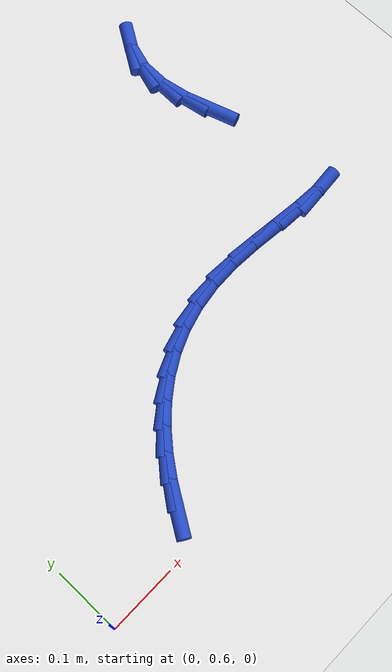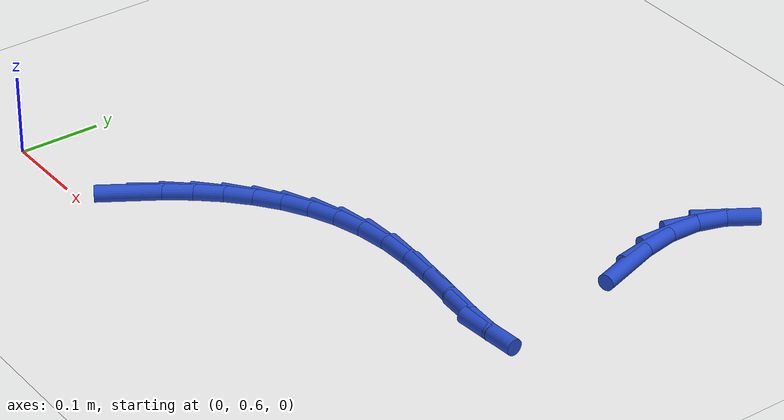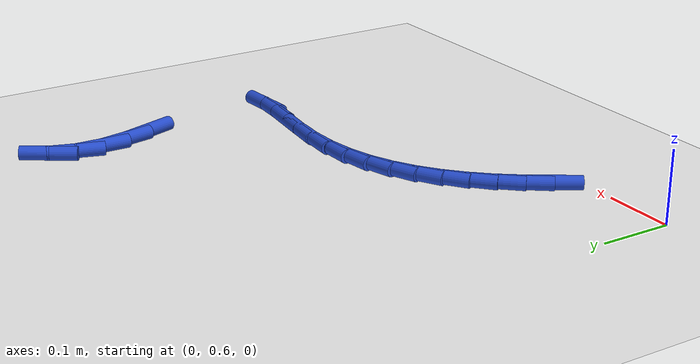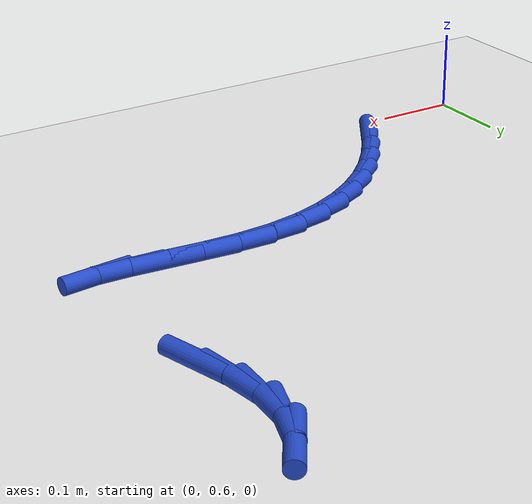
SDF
<sdf version="1.6">
 <world name="default">
  <model name="ground_plane">
   <static>1</static>
   <link name="link">
    <collision name="collision">
     <geometry><plane><normal>0 0 1</normal><size>100 100</size></plane></geometry>
     <surface><friction><ode><mu>100</mu><mu2>50</mu2></ode></friction></surface>
    </collision>
    <visual name="visual">
     <cast_shadows>0</cast_shadows>
     <geometry><plane><normal>0 0 1</normal><size>100 100</size></plane></geometry>
     <material>
      <script><uri>file://media/materials/scripts/gazebo.material</uri><name>Gazebo/WhiteGlow</name></script>
     </material>
    </visual>
   </link>
  </model>
  <model name="line">
   <link name="link_18">
    <pose>0.16115808295651374 0.6467813246118644 0.01 0 1.57 1.0045312615722355</pose>
    <collision name="collision">
     <geometry><cylinder><radius>0.01</radius><length>0.08</length></cylinder></geometry>
    </collision>
    <visual name="visual">
     <material>
      <script><name>Gazebo/Blue</name><uri>file://media/materials/scripts/gazebo.material</uri></script>
     </material>
     <geometry><cylinder><radius>0.01</radius><length>0.08</length></cylinder></geometry>
    </visual>
   </link>
   <link name="link_19">
    <pose>0.1810321488391562 0.6780440266239756 0.01 0 1.57 0.929415427886102</pose>
    <collision name="collision">
     <geometry><cylinder><radius>0.01</radius><length>0.08</length></cylinder></geometry>
    </collision>
    <visual name="visual">
     <material>
      <script><name>Gazebo/Blue</name><uri>file://media/materials/scripts/gazebo.material</uri></script>
     </material>
     <geometry><cylinder><radius>0.01</radius><length>0.08</length></cylinder></geometry>
    </visual>
   </link>
   <link name="link_20">
    <pose>0.20274563695606135 0.707123587821596 0.01 0 1.57 0.843847093934799</pose>
    <collision name="collision">
     <geometry><cylinder><radius>0.01</radius><length>0.08</length></cylinder></geometry>
    </collision>
    <visual name="visual">
     <material>
      <script><name>Gazebo/Blue</name><uri>file://media/materials/scripts/gazebo.material</uri></script>
     </material>
     <geometry><cylinder><radius>0.01</radius><length>0.08</length></cylinder></geometry>
    </visual>
   </link>
   <link name="link_21">
    <pose>0.2264163232118689 0.7337366572496882 0.01 0 1.57 0.7474708683350556</pose>
    <collision name="collision">
     <geometry><cylinder><radius>0.01</radius><length>0.08</length></cylinder></geometry>
    </collision>
    <visual name="visual">
     <material>
      <script><name>Gazebo/Blue</name><uri>file://media/materials/scripts/gazebo.material</uri></script>
     </material>
     <geometry><cylinder><radius>0.01</radius><length>0.08</length></cylinder></geometry>
    </visual>
   </link>
   <link name="link_22">
    <pose>0.25216198351121843 0.7575998839532133 0.01 0 1.57 0.6406597021847755</pose>
    <collision name="collision">
     <geometry><cylinder><radius>0.01</radius><length>0.08</length></cylinder></geometry>
    </collision>
    <visual name="visual">
     <material>
      <script><name>Gazebo/Blue</name><uri>file://media/materials/scripts/gazebo.material</uri></script>
     </material>
     <geometry><cylinder><radius>0.01</radius><length>0.08</length></cylinder></geometry>
    </visual>
   </link>
   <link name="link_23">
    <pose>0.28010039375874946 0.7784299169771336 0.01 0 1.57 0.5248192050671189</pose>
    <collision name="collision">
     <geometry><cylinder><radius>0.01</radius><length>0.08</length></cylinder></geometry>
    </collision>
    <visual name="visual">
     <material>
      <script><name>Gazebo/Blue</name><uri>file://media/materials/scripts/gazebo.material</uri></script>
     </material>
     <geometry><cylinder><radius>0.01</radius><length>0.08</length></cylinder></geometry>
    </visual>
   </link>
   <link name="link_24">
    <pose>0.3103493298591018 0.7959434053664107 0.01 0 1.57 0.4025383427622606</pose>
    <collision name="collision">
     <geometry><cylinder><radius>0.01</radius><length>0.08</length></cylinder></geometry>
    </collision>
    <visual name="visual">
     <material>
      <script><name>Gazebo/Blue</name><uri>file://media/materials/scripts/gazebo.material</uri></script>
     </material>
     <geometry><cylinder><radius>0.01</radius><length>0.08</length></cylinder></geometry>
    </visual>
   </link>
   <link name="link_25">
    <pose>0.34302656771691487 0.8098569981660068 0.01 0 1.57 0.27742124114967753</pose>
    <collision name="collision">
     <geometry><cylinder><radius>0.01</radius><length>0.08</length></cylinder></geometry>
    </collision>
    <visual name="visual">
     <material>
      <script><name>Gazebo/Blue</name><uri>file://media/materials/scripts/gazebo.material</uri></script>
     </material>
     <geometry><cylinder><radius>0.01</radius><length>0.08</length></cylinder></geometry>
    </visual>
   </link>
   <link name="link_26">
    <pose>0.37824988323682796 0.8198873444208827 0.01 0 1.57 0.15355044070518425</pose>
    <collision name="collision">
     <geometry><cylinder><radius>0.01</radius><length>0.08</length></cylinder></geometry>
    </collision>
    <visual name="visual">
     <material>
      <script><name>Gazebo/Blue</name><uri>file://media/materials/scripts/gazebo.material</uri></script>
     </material>
     <geometry><cylinder><radius>0.01</radius><length>0.08</length></cylinder></geometry>
    </visual>
   </link>
   <link name="link_27">
    <pose>0.41613705232348136 0.8257510931760015 0.01 0 1.57 0.03486780161515597</pose>
    <collision name="collision">
     <geometry><cylinder><radius>0.01</radius><length>0.08</length></cylinder></geometry>
    </collision>
    <visual name="visual">
     <material>
      <script><name>Gazebo/Blue</name><uri>file://media/materials/scripts/gazebo.material</uri></script>
     </material>
     <geometry><cylinder><radius>0.01</radius><length>0.08</length></cylinder></geometry>
    </visual>
   </link>
   <link name="link_28">
    <pose>0.456800994854266 0.8271695303317333 0.01 0 1.57 -0.06015945254124833</pose>
    <collision name="collision">
     <geometry><cylinder><radius>0.01</radius><length>0.08</length></cylinder></geometry>
    </collision>
    <visual name="visual">
     <material>
      <script><name>Gazebo/Blue</name><uri>file://media/materials/scripts/gazebo.material</uri></script>
     </material>
     <geometry><cylinder><radius>0.01</radius><length>0.08</length></cylinder></geometry>
    </visual>
   </link>
   <link name="link_29">
    <pose>0.49959201691257177 0.8245921357863724 0.01 0 1.57 -0.10757312567995905</pose>
    <collision name="collision">
     <geometry><cylinder><radius>0.01</radius><length>0.08</length></cylinder></geometry>
    </collision>
    <visual name="visual">
     <material>
      <script><name>Gazebo/Blue</name><uri>file://media/materials/scripts/gazebo.material</uri></script>
     </material>
     <geometry><cylinder><radius>0.01</radius><length>0.08</length></cylinder></geometry>
    </visual>
   </link>
   <link name="link_30">
    <pose>0.5422743588851907 0.8199828696766477 0.01 0 1.57 -0.11135375276267728</pose>
    <collision name="collision">
     <geometry><cylinder><radius>0.01</radius><length>0.08</length></cylinder></geometry>
    </collision>
    <visual name="visual">
     <material>
      <script><name>Gazebo/Blue</name><uri>file://media/materials/scripts/gazebo.material</uri></script>
     </material>
     <geometry><cylinder><radius>0.01</radius><length>0.08</length></cylinder></geometry>
    </visual>
   </link>
   <link name="link_31">
    <pose>0.582414476034081 0.8154945504341625 0.01 0 1.57 -0.06289418981075924</pose>
    <collision name="collision">
     <geometry><cylinder><radius>0.01</radius><length>0.08</length></cylinder></geometry>
    </collision>
    <visual name="visual">
     <material>
      <script><name>Gazebo/Blue</name><uri>file://media/materials/scripts/gazebo.material</uri></script>
     </material>
     <geometry><cylinder><radius>0.01</radius><length>0.08</length></cylinder></geometry>
    </visual>
   </link>
   <link name="link_32">
    <pose>0.6175788236212011 0.8132799964905195 0.01 0 1.57 0.07953022639570836</pose>
    <collision name="collision">
     <geometry><cylinder><radius>0.01</radius><length>0.08</length></cylinder></geometry>
    </collision>
    <visual name="visual">
     <material>
      <script><name>Gazebo/Blue</name><uri>file://media/materials/scripts/gazebo.material</uri></script>
     </material>
     <geometry><cylinder><radius>0.01</radius><length>0.08</length></cylinder></geometry>
    </visual>
   </link>
   <link name="link_40">
    <pose>0.6082326866523867 1.009071433606961 0.01 0 1.57 -1.258530468710658</pose>
    <collision name="collision">
     <geometry><cylinder><radius>0.01</radius><length>0.08</length></cylinder></geometry>
    </collision>
    <visual name="visual">
     <material>
      <script><name>Gazebo/Blue</name><uri>file://media/materials/scripts/gazebo.material</uri></script>
     </material>
     <geometry><cylinder><radius>0.01</radius><length>0.08</length></cylinder></geometry>
    </visual>
   </link>
   <link name="link_41">
    <pose>0.5950793695473258 1.0498155143441084 0.01 0 1.57 -1.3863100078885935</pose>
    <collision name="collision">
     <geometry><cylinder><radius>0.01</radius><length>0.08</length></cylinder></geometry>
    </collision>
    <visual name="visual">
     <material>
      <script><name>Gazebo/Blue</name><uri>file://media/materials/scripts/gazebo.material</uri></script>
     </material>
     <geometry><cylinder><radius>0.01</radius><length>0.08</length></cylinder></geometry>
    </visual>
   </link>
   <link name="link_42">
    <pose>0.5876194026254445 1.089792139597512 0.01 0 1.57 1.5498086764448906</pose>
    <collision name="collision">
     <geometry><cylinder><radius>0.01</radius><length>0.08</length></cylinder></geometry>
    </collision>
    <visual name="visual">
     <material>
      <script><name>Gazebo/Blue</name><uri>file://media/materials/scripts/gazebo.material</uri></script>
     </material>
     <geometry><cylinder><radius>0.01</radius><length>0.08</length></cylinder></geometry>
    </visual>
   </link>
   <link name="link_43">
    <pose>0.5884140249417595 1.1276480037606915 0.01 0 1.57 1.2702454409805772</pose>
    <collision name="collision">
     <geometry><cylinder><radius>0.01</radius><length>0.08</length></cylinder></geometry>
    </collision>
    <visual name="visual">
     <material>
      <script><name>Gazebo/Blue</name><uri>file://media/materials/scripts/gazebo.material</uri></script>
     </material>
     <geometry><cylinder><radius>0.01</radius><length>0.08</length></cylinder></geometry>
    </visual>
   </link>
   <link name="link_44">
    <pose>0.5991291805111367 1.1622197183760172 0.01 0 1.57 1.0015167624361119</pose>
    <collision name="collision">
     <geometry><cylinder><radius>0.01</radius><length>0.08</length></cylinder></geometry>
    </collision>
    <visual name="visual">
     <material>
      <script><name>Gazebo/Blue</name><uri>file://media/materials/scripts/gazebo.material</uri></script>
     </material>
     <geometry><cylinder><radius>0.01</radius><length>0.08</length></cylinder></geometry>
    </visual>
   </link>
  </model>
 </world>
</sdf>
